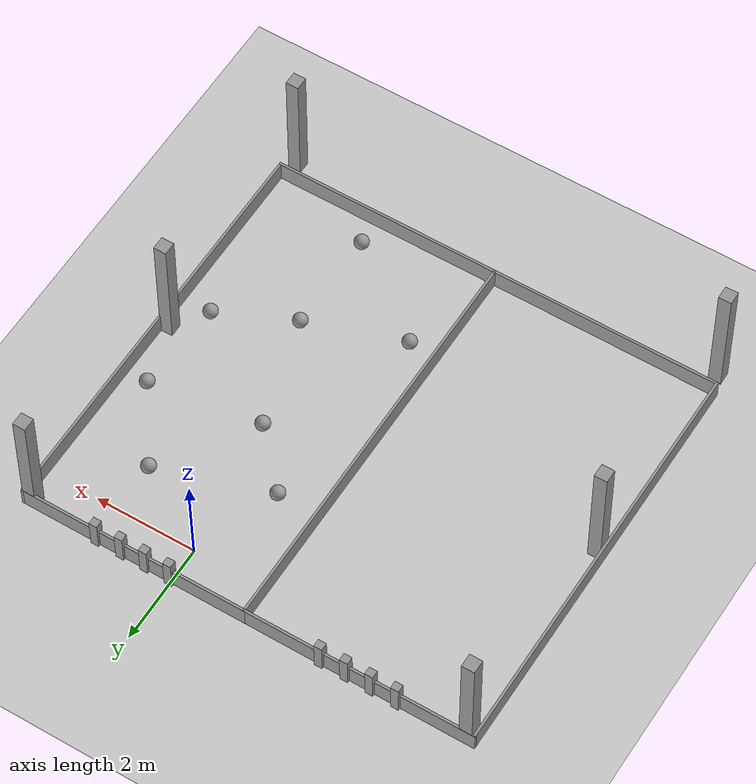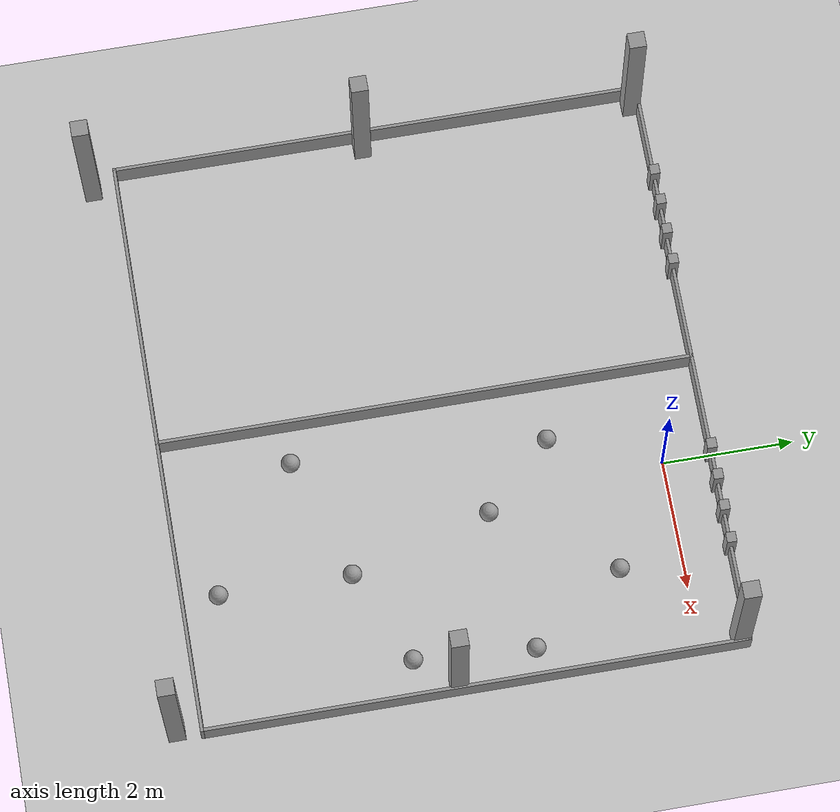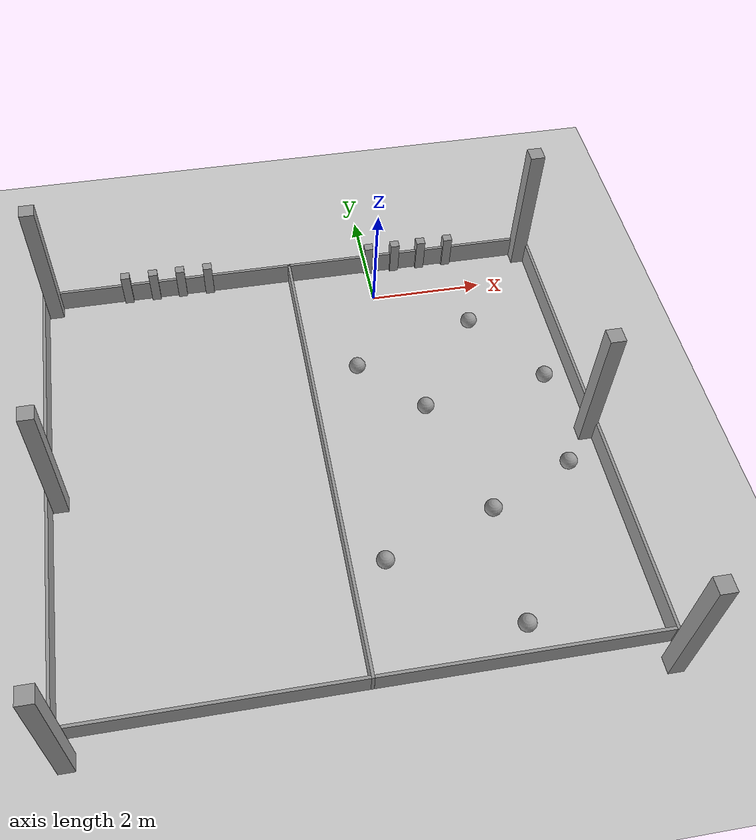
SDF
<sdf version="1.7">
 <world name="default">
  <light name="sun" type="directional">
   <pose>0 0 10 0 -0 0</pose>
   <diffuse>0.8 0.8 0.8 1</diffuse>
   <specular>0.2 0.2 0.2 1</specular>
   <attenuation>
    <range>1000</range>
    <constant>0.9</constant>
    <linear>0.01</linear>
    <quadratic>0.001</quadratic>
   </attenuation>
   <direction>-0.5 0.1 -0.9</direction>
   <spot><inner_angle>0</inner_angle><outer_angle>0</outer_angle><falloff>0</falloff></spot>
  </light>
  <model name="ground_plane">
   <static>1</static>
   <link name="link">
    <collision name="collision">
     <geometry><plane><normal>0 0 1</normal><size>100 100</size></plane></geometry>
     <surface>
      <contact><collide_bitmask>65535</collide_bitmask></contact>
      <friction><ode><mu>100</mu><mu2>50</mu2></ode></friction>
     </surface>
    </collision>
    <visual name="visual">
     <cast_shadows>0</cast_shadows>
     <geometry><plane><normal>0 0 1</normal><size>100 100</size></plane></geometry>
     <material>
      <script><uri>file://media/materials/scripts/gazebo.material</uri><name>Gazebo/Grey</name></script>
     </material>
    </visual>
   </link>
  </model>
  <gravity>0 0 -9.8</gravity>
  <magnetic_field>6e-06 2.3e-05 -4.2e-05</magnetic_field>
  <atmosphere type="adiabatic"/>
  <physics type="ode">
   <max_step_size>0.001</max_step_size>
   <real_time_factor>1</real_time_factor>
   <real_time_update_rate>1000</real_time_update_rate>
  </physics>
  <scene><ambient>0.4 0.4 0.4 1</ambient><background>0.7 0.7 0.7 1</background><shadows>1</shadows></scene>
  <audio><device>default</device></audio>
  <spherical_coordinates>
   <surface_model>EARTH_WGS84</surface_model>
   <latitude_deg>0</latitude_deg>
   <longitude_deg>0</longitude_deg>
   <elevation>0</elevation>
   <heading_deg>0</heading_deg>
  </spherical_coordinates>
  <model name="UCF_WALL_0">
   <pose>-1.493 -3.5975 0 0 -0 0</pose>
   <link name="Wall_32">
    <collision name="Wall_32_Collision">
     <geometry><box><size>4.57 0.05 0.4</size></box></geometry>
     <pose>0 0 0.2 0 -0 0</pose>
    </collision>
    <visual name="Wall_32_Visual">
     <pose>0 0 0.2 0 -0 0</pose>
     <geometry><box><size>4.57 0.05 0.4</size></box></geometry>
     <material>
      <script><uri>file://media/materials/scripts/gazebo.material</uri><name>Gazebo/Grey</name></script>
      <ambient>1 1 1 1</ambient>
     </material>
     <meta><layer>0</layer></meta>
    </visual>
    <pose>2.26 4.3125 0 0 -0 0</pose>
   </link>
   <link name="Wall_36">
    <collision name="Wall_36_Collision">
     <geometry><box><size>8.24 0.05 0.4</size></box></geometry>
     <pose>0 0 0.2 0 -0 0</pose>
    </collision>
    <visual name="Wall_36_Visual">
     <pose>0 0 0.2 0 -0 0</pose>
     <geometry><box><size>8.24 0.05 0.4</size></box></geometry>
     <material>
      <script><uri>file://media/materials/scripts/gazebo.material</uri><name>Gazebo/Grey</name></script>
      <ambient>1 1 1 1</ambient>
     </material>
     <meta><layer>0</layer></meta>
    </visual>
    <pose>4.52 0.2175 0 0 -0 -1.5708</pose>
   </link>
   <link name="Wall_38">
    <collision name="Wall_38_Collision">
     <geometry><box><size>4.56952 0.05 0.4</size></box></geometry>
     <pose>0 0 0.2 0 -0 0</pose>
    </collision>
    <visual name="Wall_38_Visual">
     <pose>0 0 0.2 0 -0 0</pose>
     <geometry><box><size>4.56952 0.05 0.4</size></box></geometry>
     <material>
      <script><uri>file://media/materials/scripts/gazebo.material</uri><name>Gazebo/Grey</name></script>
      <ambient>1 1 1 1</ambient>
     </material>
     <meta><layer>0</layer></meta>
    </visual>
    <pose>2.26024 -3.87729 0 0 -0 3.1415</pose>
   </link>
   <link name="Wall_39">
    <collision name="Wall_39_Collision">
     <geometry><box><size>4.57 0.05 0.4</size></box></geometry>
     <pose>0 0 0.2 0 -0 0</pose>
    </collision>
    <visual name="Wall_39_Visual">
     <pose>0 0 0.2 0 -0 0</pose>
     <geometry><box><size>4.57 0.05 0.4</size></box></geometry>
     <material>
      <script><uri>file://media/materials/scripts/gazebo.material</uri><name>Gazebo/Grey</name></script>
      <ambient>1 1 1 1</ambient>
     </material>
     <meta><layer>0</layer></meta>
    </visual>
    <pose>-2.25952 -3.87708 0 0 -0 3.14159</pose>
   </link>
   <link name="Wall_41">
    <collision name="Wall_41_Collision">
     <geometry><box><size>8.24 0.05 0.4</size></box></geometry>
     <pose>0 0 0.2 0 -0 0</pose>
    </collision>
    <visual name="Wall_41_Visual">
     <pose>0 0 0.2 0 -0 0</pose>
     <geometry><box><size>8.24 0.05 0.4</size></box></geometry>
     <material>
      <script><uri>file://media/materials/scripts/gazebo.material</uri><name>Gazebo/Grey</name></script>
      <ambient>1 1 1 1</ambient>
     </material>
     <meta><layer>0</layer></meta>
    </visual>
    <pose>-1e-06 0.2175 0 0 -0 -1.5708</pose>
   </link>
   <link name="Wall_43">
    <collision name="Wall_43_Collision">
     <geometry><box><size>4.57 0.05 0.4</size></box></geometry>
     <pose>0 0 0.2 0 -0 0</pose>
    </collision>
    <visual name="Wall_43_Visual">
     <pose>0 0 0.2 0 -0 0</pose>
     <geometry><box><size>4.57 0.05 0.4</size></box></geometry>
     <material>
      <script><uri>file://media/materials/scripts/gazebo.material</uri><name>Gazebo/Grey</name></script>
      <ambient>1 1 1 1</ambient>
     </material>
     <meta><layer>0</layer></meta>
    </visual>
    <pose>-2.26 4.3125 0 0 -0 3.14159</pose>
   </link>
   <link name="Wall_45">
    <collision name="Wall_45_Collision">
     <geometry><box><size>8.24 0.05 0.4</size></box></geometry>
     <pose>0 0 0.2 0 -0 0</pose>
    </collision>
    <visual name="Wall_45_Visual">
     <pose>0 0 0.2 0 -0 0</pose>
     <geometry><box><size>8.24 0.05 0.4</size></box></geometry>
     <material>
      <script><uri>file://media/materials/scripts/gazebo.material</uri><name>Gazebo/Grey</name></script>
      <ambient>1 1 1 1</ambient>
     </material>
     <meta><layer>0</layer></meta>
    </visual>
    <pose>-4.52 0.2175 0 0 -0 -1.5708</pose>
   </link>
   <link name="Wall_54">
    <collision name="Wall_54_Collision">
     <geometry><box><size>0.16 0.15 0.629</size></box></geometry>
     <pose>0 0 0.3145 0 -0 0</pose>
    </collision>
    <visual name="Wall_54_Visual">
     <pose>0 0 0.3145 0 -0 0</pose>
     <geometry><box><size>0.16 0.15 0.629</size></box></geometry>
     <material>
      <script><uri>file://media/materials/scripts/gazebo.material</uri><name>Gazebo/Grey</name></script>
      <ambient>1 1 1 1</ambient>
     </material>
     <meta><layer>0</layer></meta>
    </visual>
    <pose>-2.512 4.3125 0 0 -0 0</pose>
   </link>
   <link name="Wall_58">
    <collision name="Wall_58_Collision">
     <geometry><box><size>0.16 0.15 0.629</size></box></geometry>
     <pose>0 0 0.3145 0 -0 0</pose>
    </collision>
    <visual name="Wall_58_Visual">
     <pose>0 0 0.3145 0 -0 0</pose>
     <geometry><box><size>0.16 0.15 0.629</size></box></geometry>
     <material>
      <script><uri>file://media/materials/scripts/gazebo.material</uri><name>Gazebo/Grey</name></script>
      <ambient>1 1 1 1</ambient>
     </material>
     <meta><layer>0</layer></meta>
    </visual>
    <pose>-3.015 4.3125 0 0 -0 3.14159</pose>
   </link>
   <link name="Wall_64">
    <collision name="Wall_64_Collision">
     <geometry><box><size>0.16 0.15 0.629</size></box></geometry>
     <pose>0 0 0.3145 0 -0 0</pose>
    </collision>
    <visual name="Wall_64_Visual">
     <pose>0 0 0.3145 0 -0 0</pose>
     <geometry><box><size>0.16 0.15 0.629</size></box></geometry>
     <material>
      <script><uri>file://media/materials/scripts/gazebo.material</uri><name>Gazebo/Grey</name></script>
      <ambient>1 1 1 1</ambient>
     </material>
     <meta><layer>0</layer></meta>
    </visual>
    <pose>1.505 4.3125 0 0 -0 3.14159</pose>
   </link>
   <link name="Wall_66">
    <collision name="Wall_66_Collision">
     <geometry><box><size>0.16 0.15 0.629</size></box></geometry>
     <pose>0 0 0.3145 0 -0 0</pose>
    </collision>
    <visual name="Wall_66_Visual">
     <pose>0 0 0.3145 0 -0 0</pose>
     <geometry><box><size>0.16 0.15 0.629</size></box></geometry>
     <material>
      <script><uri>file://media/materials/scripts/gazebo.material</uri><name>Gazebo/Grey</name></script>
      <ambient>1 1 1 1</ambient>
     </material>
     <meta><layer>0</layer></meta>
    </visual>
    <pose>1.998 4.3125 0 0 -0 0</pose>
   </link>
   <link name="Wall_68">
    <collision name="Wall_68_Collision">
     <geometry><box><size>0.16 0.15 0.629</size></box></geometry>
     <pose>0 0 0.3145 0 -0 0</pose>
    </collision>
    <visual name="Wall_68_Visual">
     <pose>0 0 0.3145 0 -0 0</pose>
     <geometry><box><size>0.16 0.15 0.629</size></box></geometry>
     <material>
      <script><uri>file://media/materials/scripts/gazebo.material</uri><name>Gazebo/Grey</name></script>
      <ambient>1 1 1 1</ambient>
     </material>
     <meta><layer>0</layer></meta>
    </visual>
    <pose>2.491 4.3125 0 0 -0 0</pose>
   </link>
   <link name="Wall_70">
    <collision name="Wall_70_Collision">
     <geometry><box><size>0.16 0.15 0.629</size></box></geometry>
     <pose>0 0 0.3145 0 -0 0</pose>
    </collision>
    <visual name="Wall_70_Visual">
     <pose>0 0 0.3145 0 -0 0</pose>
     <geometry><box><size>0.16 0.15 0.629</size></box></geometry>
     <material>
      <script><uri>file://media/materials/scripts/gazebo.material</uri><name>Gazebo/Grey</name></script>
      <ambient>1 1 1 1</ambient>
     </material>
     <meta><layer>0</layer></meta>
    </visual>
    <pose>3.005 4.3125 0 0 -0 0</pose>
   </link>
   <link name="Wall_72">
    <collision name="Wall_72_Collision">
     <geometry><box><size>0.16 0.15 0.629</size></box></geometry>
     <pose>0 0 0.3145 0 -0 0</pose>
    </collision>
    <visual name="Wall_72_Visual">
     <pose>0 0 0.3145 0 -0 0</pose>
     <geometry><box><size>0.16 0.15 0.629</size></box></geometry>
     <material>
      <script><uri>file://media/materials/scripts/gazebo.material</uri><name>Gazebo/Grey</name></script>
      <ambient>1 1 1 1</ambient>
     </material>
     <meta><layer>0</layer></meta>
    </visual>
    <pose>-2.019 4.3125 0 0 -0 0</pose>
   </link>
   <link name="Wall_74">
    <collision name="Wall_74_Collision">
     <geometry><box><size>0.16 0.15 0.629</size></box></geometry>
     <pose>0 0 0.3145 0 -0 0</pose>
    </collision>
    <visual name="Wall_74_Visual">
     <pose>0 0 0.3145 0 -0 0</pose>
     <geometry><box><size>0.16 0.15 0.629</size></box></geometry>
     <material>
      <script><uri>file://media/materials/scripts/gazebo.material</uri><name>Gazebo/Grey</name></script>
      <ambient>1 1 1 1</ambient>
     </material>
     <meta><layer>0</layer></meta>
    </visual>
    <pose>-1.515 4.3125 0 0 -0 0</pose>
   </link>
   <link name="Wall_79">
    <collision name="Wall_79_Collision">
     <geometry><box><size>0.26 0.25 2.5</size></box></geometry>
     <pose>0 0 1.25 0 -0 0</pose>
    </collision>
    <visual name="Wall_79_Visual">
     <pose>0 0 1.25 0 -0 0</pose>
     <geometry><box><size>0.26 0.25 2.5</size></box></geometry>
     <material>
      <script><uri>file://media/materials/scripts/gazebo.material</uri><name>Gazebo/Grey</name></script>
      <ambient>1 1 1 1</ambient>
     </material>
     <meta><layer>0</layer></meta>
    </visual>
    <pose>4.393 -4.2575 0 0 -0 -1.5708</pose>
   </link>
   <link name="Wall_90">
    <collision name="Wall_90_Collision">
     <geometry><box><size>0.26 0.25 2.5</size></box></geometry>
     <pose>0 0 1.25 0 -0 0</pose>
    </collision>
    <visual name="Wall_90_Visual">
     <pose>0 0 1.25 0 -0 0</pose>
     <geometry><box><size>0.26 0.25 2.5</size></box></geometry>
     <material>
      <script><uri>file://media/materials/scripts/gazebo.material</uri><name>Gazebo/Grey</name></script>
      <ambient>1 1 1 1</ambient>
     </material>
     <meta><layer>0</layer></meta>
    </visual>
    <pose>4.393 4.2025 0 0 -0 -1.5708</pose>
   </link>
   <link name="Wall_93">
    <collision name="Wall_93_Collision">
     <geometry><box><size>0.26 0.25 2.5</size></box></geometry>
     <pose>0 0 1.25 0 -0 0</pose>
    </collision>
    <visual name="Wall_93_Visual">
     <pose>0 0 1.25 0 -0 0</pose>
     <geometry><box><size>0.26 0.25 2.5</size></box></geometry>
     <material>
      <script><uri>file://media/materials/scripts/gazebo.material</uri><name>Gazebo/Grey</name></script>
      <ambient>1 1 1 1</ambient>
     </material>
     <meta><layer>0</layer></meta>
    </visual>
    <pose>-4.357 4.2025 0 0 -0 -1.5708</pose>
   </link>
   <link name="Wall_95">
    <collision name="Wall_95_Collision">
     <geometry><box><size>0.26 0.25 2.5</size></box></geometry>
     <pose>0 0 1.25 0 -0 0</pose>
    </collision>
    <visual name="Wall_95_Visual">
     <pose>0 0 1.25 0 -0 0</pose>
     <geometry><box><size>0.26 0.25 2.5</size></box></geometry>
     <material>
      <script><uri>file://media/materials/scripts/gazebo.material</uri><name>Gazebo/Grey</name></script>
      <ambient>1 1 1 1</ambient>
     </material>
     <meta><layer>0</layer></meta>
    </visual>
    <pose>-4.357 -4.2575 0 0 -0 -1.5708</pose>
   </link>
   <link name="Wall_97">
    <collision name="Wall_97_Collision">
     <geometry><box><size>0.26 0.25 2.5</size></box></geometry>
     <pose>0 0 1.25 0 -0 0</pose>
    </collision>
    <visual name="Wall_97_Visual">
     <pose>0 0 1.25 0 -0 0</pose>
     <geometry><box><size>0.26 0.25 2.5</size></box></geometry>
     <material>
      <script><uri>file://media/materials/scripts/gazebo.material</uri><name>Gazebo/Grey</name></script>
      <ambient>1 1 1 1</ambient>
     </material>
     <meta><layer>0</layer></meta>
    </visual>
    <pose>-4.357 -0.0375 0 0 -0 -1.5708</pose>
   </link>
   <link name="Wall_99">
    <collision name="Wall_99_Collision">
     <geometry><box><size>0.26 0.25 2.5</size></box></geometry>
     <pose>0 0 1.25 0 -0 0</pose>
    </collision>
    <visual name="Wall_99_Visual">
     <pose>0 0 1.25 0 -0 0</pose>
     <geometry><box><size>0.26 0.25 2.5</size></box></geometry>
     <material>
      <script><uri>file://media/materials/scripts/gazebo.material</uri><name>Gazebo/Grey</name></script>
      <ambient>1 1 1 1</ambient>
     </material>
     <meta><layer>0</layer></meta>
    </visual>
    <pose>4.393 -0.0375 0 0 -0 -1.5708</pose>
   </link>
   <static>1</static>
  </model>
  <model name="unit_sphere_clone_clone_1_clone">
   <pose>0.36078 -2.72903 0.143781 0 -0 0</pose>
   <link name="link">
    <inertial>
     <mass>1</mass>
     <inertia><ixx>0.1</ixx><ixy>0</ixy><ixz>0</ixz><iyy>0.1</iyy><iyz>0</iyz><izz>0.1</izz></inertia>
    </inertial>
    <collision name="collision"><geometry><sphere><radius>0.143781</radius></sphere></geometry></collision>
    <visual name="visual">
     <geometry><sphere><radius>0.143781</radius></sphere></geometry>
     <material>
      <script><name>Gazebo/Grey</name><uri>file://media/materials/scripts/gazebo.material</uri></script>
     </material>
    </visual>
   </link>
  </model>
  <model name="unit_sphere_clone_clone_1_clone_0">
   <pose>1.56258 -0.953428 0.143781 0 -0 0</pose>
   <link name="link">
    <inertial>
     <mass>1</mass>
     <inertia><ixx>0.1</ixx><ixy>0</ixy><ixz>0</ixz><iyy>0.1</iyy><iyz>0</iyz><izz>0.1</izz></inertia>
    </inertial>
    <collision name="collision"><geometry><sphere><radius>0.143781</radius></sphere></geometry></collision>
    <visual name="visual">
     <geometry><sphere><radius>0.143781</radius></sphere></geometry>
     <material>
      <script><name>Gazebo/Grey</name><uri>file://media/materials/scripts/gazebo.material</uri></script>
     </material>
    </visual>
   </link>
  </model>
  <model name="unit_sphere_clone_clone_1_clone_1">
   <pose>2.56022 -2.40159 0.143781 0 -0 0</pose>
   <link name="link">
    <inertial>
     <mass>1</mass>
     <inertia><ixx>0.1</ixx><ixy>0</ixy><ixz>0</ixz><iyy>0.1</iyy><iyz>0</iyz><izz>0.1</izz></inertia>
    </inertial>
    <collision name="collision"><geometry><sphere><radius>0.143781</radius></sphere></geometry></collision>
    <visual name="visual">
     <geometry><sphere><radius>0.143781</radius></sphere></geometry>
     <material>
      <script><name>Gazebo/Grey</name><uri>file://media/materials/scripts/gazebo.material</uri></script>
     </material>
    </visual>
   </link>
  </model>
  <model name="unit_sphere_clone_clone_1_clone_2">
   <pose>2.43091 -4.23354 0.143781 0 -0 0</pose>
   <link name="link">
    <inertial>
     <mass>1</mass>
     <inertia><ixx>0.1</ixx><ixy>0</ixy><ixz>0</ixz><iyy>0.1</iyy><iyz>0</iyz><izz>0.1</izz></inertia>
    </inertial>
    <collision name="collision"><geometry><sphere><radius>0.143781</radius></sphere></geometry></collision>
    <visual name="visual">
     <geometry><sphere><radius>0.143781</radius></sphere></geometry>
     <material>
      <script><name>Gazebo/Grey</name><uri>file://media/materials/scripts/gazebo.material</uri></script>
     </material>
    </visual>
   </link>
  </model>
  <model name="unit_sphere_clone_clone_1_clone_3">
   <pose>0.954489 -6.92726 0.143781 0 -0 0</pose>
   <link name="link">
    <inertial>
     <mass>1</mass>
     <inertia><ixx>0.1</ixx><ixy>0</ixy><ixz>0</ixz><iyy>0.1</iyy><iyz>0</iyz><izz>0.1</izz></inertia>
    </inertial>
    <collision name="collision"><geometry><sphere><radius>0.143781</radius></sphere></geometry></collision>
    <visual name="visual">
     <geometry><sphere><radius>0.143781</radius></sphere></geometry>
     <material>
      <script><name>Gazebo/Grey</name><uri>file://media/materials/scripts/gazebo.material</uri></script>
     </material>
    </visual>
   </link>
  </model>
  <model name="unit_sphere_clone_clone_1_clone_4">
   <pose>0.972971 -4.90604 0.143781 0 -0 0</pose>
   <link name="link">
    <inertial>
     <mass>1</mass>
     <inertia><ixx>0.1</ixx><ixy>0</ixy><ixz>0</ixz><iyy>0.1</iyy><iyz>0</iyz><izz>0.1</izz></inertia>
    </inertial>
    <collision name="collision"><geometry><sphere><radius>0.143781</radius></sphere></geometry></collision>
    <visual name="visual">
     <geometry><sphere><radius>0.143781</radius></sphere></geometry>
     <material>
      <script><name>Gazebo/Grey</name><uri>file://media/materials/scripts/gazebo.material</uri></script>
     </material>
    </visual>
   </link>
  </model>
  <model name="unit_sphere_clone_clone_1_clone_clone">
   <pose>-0.632186 -1.66745 0.143781 0 -0 0</pose>
   <link name="link">
    <inertial>
     <mass>1</mass>
     <inertia><ixx>0.1</ixx><ixy>0</ixy><ixz>0</ixz><iyy>0.1</iyy><iyz>0</iyz><izz>0.1</izz></inertia>
    </inertial>
    <collision name="collision"><geometry><sphere><radius>0.143781</radius></sphere></geometry></collision>
    <visual name="visual">
     <geometry><sphere><radius>0.143781</radius></sphere></geometry>
     <material>
      <script><name>Gazebo/Grey</name><uri>file://media/materials/scripts/gazebo.material</uri></script>
     </material>
    </visual>
   </link>
  </model>
  <model name="unit_sphere_clone_clone_1_clone_clone_0">
   <pose>-0.911756 -5.54229 0.143781 0 -0 0</pose>
   <link name="link">
    <inertial>
     <mass>1</mass>
     <inertia><ixx>0.1</ixx><ixy>0</ixy><ixz>0</ixz><iyy>0.1</iyy><iyz>0</iyz><izz>0.1</izz></inertia>
    </inertial>
    <collision name="collision"><geometry><sphere><radius>0.143781</radius></sphere></geometry></collision>
    <visual name="visual">
     <geometry><sphere><radius>0.143781</radius></sphere></geometry>
     <material>
      <script><name>Gazebo/Grey</name><uri>file://media/materials/scripts/gazebo.material</uri></script>
     </material>
    </visual>
   </link>
  </model>
 </world>
</sdf>
